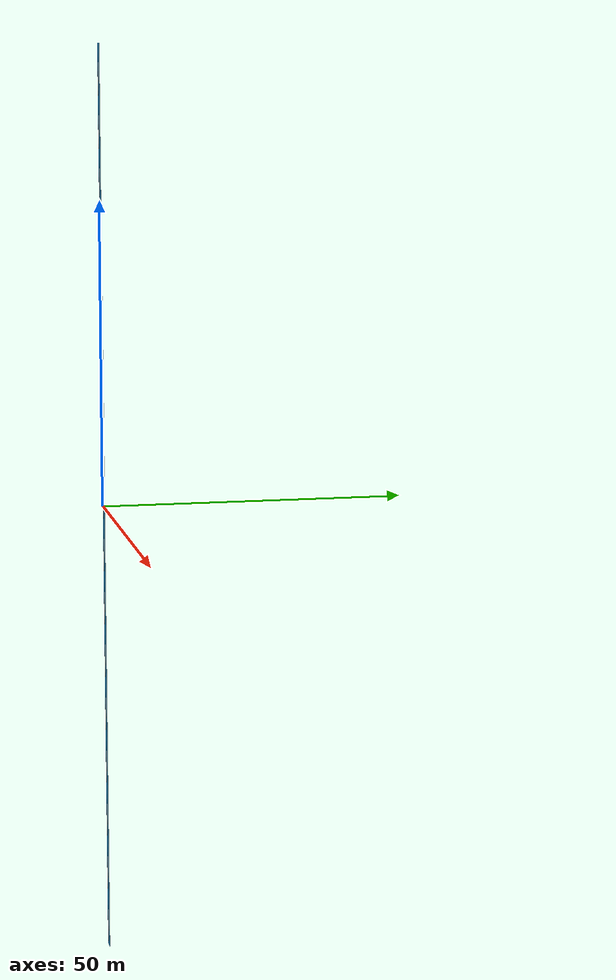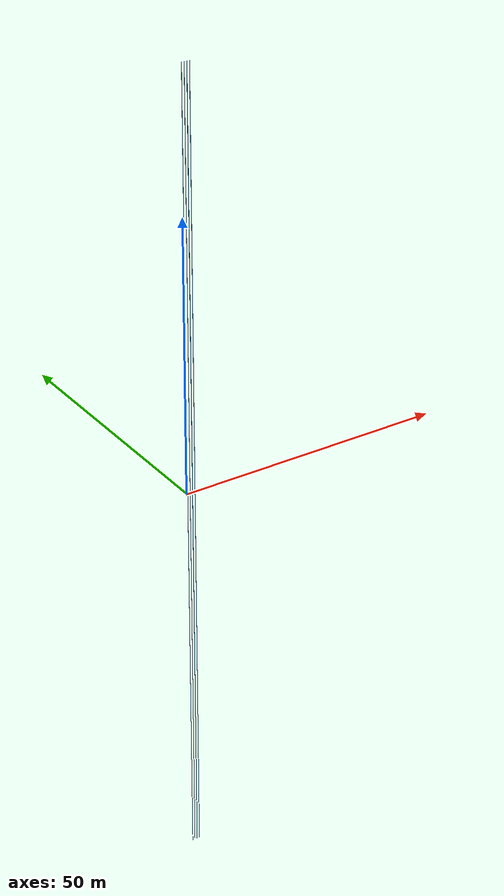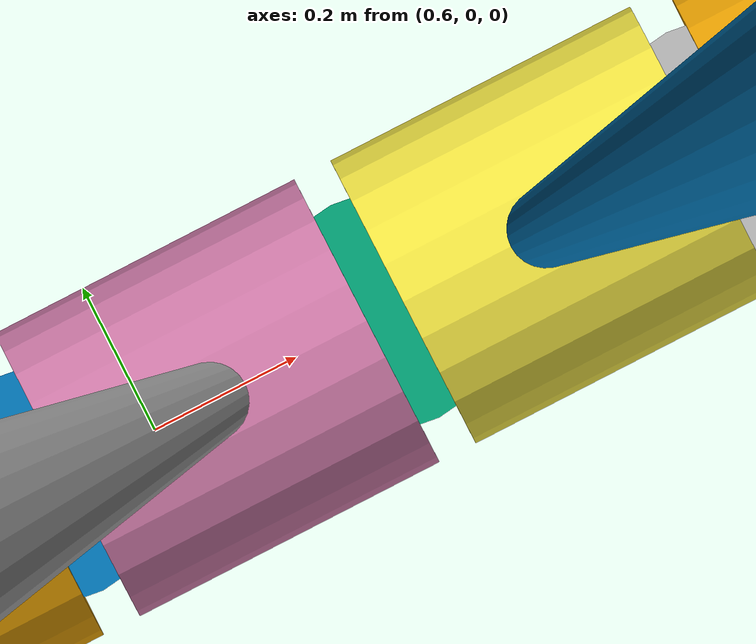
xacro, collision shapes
<?xml version="1.0"?>
<robot
    xmlns:xacro="http://www.ros.org/wiki/xacro" name="dragon" >

  <xacro:include filename="$(find aerial_robot_model)/urdf/dragon/dragon_common.xacro" />
  <xacro:include filename="$(find aerial_robot_model)/urdf/dragon/dragon_link.urdf.xacro" />

  <xacro:dragon_module self="1" child="2" baselink="false" />
  <xacro:dragon_module self="2" child="3" baselink="true" />
  <xacro:dragon_module self="3" child="4" baselink="false" />
  <xacro:dragon_module self="4" child="4" baselink="false" />
</robot>

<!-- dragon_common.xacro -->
<robot
    xmlns:xacro="http://www.ros.org/wiki/xacro" name="dragon_common" >

  <!--  model type 1: head-->
  <!--  model type 2: baselink (attached with imu, pc)-->
  <!--  model type 3: general -->
  <!--  model type 4: end -->

  <xacro:property name="pi" value="3.1415926535897931" />
  <!-- kinematics [m] -->
  <xacro:property name="link_length" value=".424" />
  <xacro:property name="inter_joint_x_offset" value=".02575" />
  <xacro:property name="gimbal_roll_x_offset" value="-0.01" />
  <xacro:property name="gimbal_pitch_z_offset" value="0.037" />

  <!-- dynamics -->
  <xacro:property name="max_force" value="18" />

  <xacro:macro name="link_model" params="type">
    <collision>
      <origin rpy="0 ${pi/2} 0" xyz="${link_length* 0.5} 0 0"/>
      <geometry>
        <cylinder length="${link_length}" radius="0.2"/>
      </geometry>
    </collision>

    <visual>
      <origin rpy="${-pi/2} 0 0" xyz="${link_length* 0.5} 0 0"/>
      <geometry>
        <mesh filename="package://aerial_robot_model/urdf/dragon/mesh/ducted_fan_${type}.dae"/>
      </geometry>
    </visual>
  </xacro:macro>

  <!-- friction -->
  <xacro:macro name="friction" params="self">
    <gazebo reference="link${self}">
      <mu1>0.0001</mu1>
      <mu2>0.0001</mu2>
    </gazebo>
  </xacro:macro>

  <xacro:macro name="damping_factor" params="link">
    <gazebo reference="${link}">
      <dampingFactor>0.00</dampingFactor>
    </gazebo>
  </xacro:macro>
</robot>

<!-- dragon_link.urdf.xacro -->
<robot
    xmlns:xacro="http://www.ros.org/wiki/xacro" name="dragon_link" >

  <!-- D-H kai description(different from prof.nakamura) -->
  <xacro:macro name="dragon_module" params="self child baselink">

    <!-- link -->
    <link name="link${self}">
      <!-- head -->
      <xacro:if value="${self == 1}">
        <inertial>
          <origin xyz="${link_length* 0.5 + 89.07 * 0.001} ${-6.90 * 0.001} ${-25.71 * 0.001}" rpy="0 0 0"/>
          <mass value="0.7694" />
          <inertia
              ixx="0.0014" iyy="0.0144" izz="0.0137"
              ixy="-0.0009" ixz="-0.0018" iyz="0.0"/>
        </inertial>
        <xacro:link_model type="head_link" />
      </xacro:if>
      <xacro:unless value="${self == 1}">

        <!-- tail -->
        <xacro:if value="${self == child}">
          <inertial>
            <origin xyz="${link_length* 0.5 + 24.31 * 0.001} ${-0.12 * 0.001} ${-18.98 * 0.001}" rpy="0 0 0"/>
            <mass value="0.7669" />
            <inertia
                ixx="0.0014" iyy="0.0146" izz="0.0134"
                ixy="0.0" ixz="-0.0029" iyz="0.0"/>
          </inertial>
          <xacro:link_model type="end_link" />
        </xacro:if>
        <xacro:unless value="${self == child}">
          <!-- baselink -->
          <xacro:if value="${baselink}">
            <inertial>
            <origin xyz="${link_length* 0.5 + 34.31 * 0.001} ${-1.41 * 0.001} ${-12.73 * 0.001}" rpy="0 0 0"/>
            <mass value="1.0337" />
            <inertia
                ixx="0.0019" iyy="0.0206" izz="0.0197"
                ixy="-0.0014" ixz="-0.0027" iyz="0.0"/>
            </inertial>
            <xacro:link_model type="baselink" />
          </xacro:if>
          <!-- general -->
          <xacro:unless value="${baselink}">
            <inertial>
              <origin xyz="${link_length* 0.5 + 48.08 * 0.001} ${-5.92 * 0.001} ${-15.22 * 0.001}" rpy="0 0 0"/>
              <mass value="0.9099" />
              <inertia
                  ixx="0.0017" iyy="0.0188" izz="0.0179"
                  ixy="-0.0009" ixz="-0.0028" iyz="0.0"/>
            </inertial>
            <xacro:link_model type="general_link" />
          </xacro:unless>
        </xacro:unless>
      </xacro:unless>
    </link>
    <xacro:damping_factor link ="link${self}"/>

    <!-- gimbal roll -->
    <joint name="gimbal${self}_roll" type="revolute">
      <limit effort="3" lower="-3.14" upper="3.14" velocity="12.5"/>
      <parent link="link${self}"/>
      <child link="gimbal${self}_roll_module"/>
      <origin rpy="0 0 0" xyz="${link_length/2} 0 0"/>
      <axis xyz="1 0 0"/>
      <dynamics damping="0.8" friction="0.05"/>
    </joint>

    <link name="gimbal${self}_roll_module">
      <!-- common inertial -->
      <inertial>
        <origin xyz="${gimbal_roll_x_offset - 17.20968 * 0.001} ${0.41439 * 0.001} ${15.61551 * 0.001}" rpy="0 0 0"/>
        <mass value="0.44011" />
        <inertia
            ixx="0.0005" iyy="0.0007" izz="0.0003"
            ixy="0" ixz="-0.0002" iyz="0.0"/>
      </inertial>

      <collision>
        <origin xyz="${gimbal_roll_x_offset} 0 0" rpy="0 0 0"/>
        <geometry>
          <cylinder length="150" radius="0.05"/>
        </geometry>
      </collision>

      <visual>
        <origin xyz="${gimbal_roll_x_offset} 0 0" rpy="${-pi/2} 0 0"/>
        <geometry>
          <mesh filename="package://aerial_robot_model/urdf/dragon/mesh/ducted_fan_gimbal_roll.dae"/>
        </geometry>
      </visual>
    </link>

    <!-- gimbal pitch -->
    <joint name="gimbal${self}_pitch" type="revolute">
      <limit effort="3" lower="-3.14" upper="3.14" velocity="12.5"/>
      <parent link="gimbal${self}_roll_module"/>
      <child link="gimbal${self}_pitch_module"/>
      <origin rpy="0 0 0" xyz="0 0 ${gimbal_pitch_z_offset}"/>
      <axis xyz="0 1 0"/>
      <dynamics damping="0.8" friction="0.05"/>
    </joint>

    <link name="gimbal${self}_pitch_module">
      <!-- common inertial -->
      <inertial>
        <origin xyz="0 0.47 -7.38" rpy="0 0 0"/>
        <mass value=".4187" />
        <inertia
            ixx="0.0047" iyy="0.0002" izz="0.0047"
            ixy="0" ixz="0.0" iyz="0.0"/>
      </inertial>

      <collision>
        <origin xyz="0 0 0" rpy="${pi/2} 0 0"/>
        <geometry>
          <cylinder length="0.3" radius="0.05"/>
        </geometry>
      </collision>

      <visual>
        <origin xyz="0 0 0" rpy="${-pi/2} 0 0"/>
        <geometry>
          <mesh filename="package://aerial_robot_model/urdf/dragon/mesh/ducted_fan_gimbal_pitch.dae"/>
        </geometry>
      </visual>
    </link>

    <!-- rotor -->
    <joint name="rotor${self}" type="continuous">
      <limit effort="100.0" lower="0" upper="${max_force}" velocity="0.5"/> <!-- force range -->
      <parent link="gimbal${self}_pitch_module"/>
      <child link="propeller${self}"/>
      <origin rpy="0 0 0" xyz="0 0 0"/>
      <axis xyz="0 0 1"/>
    </joint>

    <link name="propeller${self}">
      <inertial>
        <origin xyz="0 0 0" rpy="0 0 0"/>
        <mass value="0.000001"/>
        <inertia
            ixx="0.000001" ixy="0.0" ixz="0.0"
            iyy="0.000001" iyz="0.0"
            izz="0.000002"/>
      </inertial>
    </link>
    <xacro:damping_factor link ="propeller${self}"/>

    <!-- joint -->>
    <xacro:unless value="${self == child}">
      <joint name="joint${self}_pitch" type="revolute">
        <limit effort="10.0" lower="-1.57" upper="1.57" velocity="0.5"/>
        <parent link="link${self}"/>
        <child link="inter_joint${self}"/>
        <origin rpy="0 0 0" xyz="${link_length} 0 0"/>
        <axis xyz="0 1 0"/>
        <dynamics damping="0.8" friction="0.05"/>
      </joint>

      <!-- inter joint -->
      <link name="inter_joint${self}">
        <!-- common inertial -->
        <inertial>
          <origin xyz="${inter_joint_x_offset + 3.43 * 0.001} ${-4.27 * 0.001} ${-1.55 * 0.001}" rpy="0 0 0"/>
          <mass value="0.1329" />
          <inertia
              ixx="0.0001" iyy="0.0001" izz="0.0001"
              ixy="0" ixz="0.0" iyz="0.0"/>
        </inertial>

        <collision>
          <origin rpy="0 0 0" xyz="${inter_joint_x_offset} 0 0"/>
          <geometry>
            <cylinder length="0.15" radius="0.15"/>
          </geometry>
        </collision>

        <visual>
          <origin rpy="${-pi/2} 0 0" xyz="${inter_joint_x_offset} 0 0"/>
          <geometry>
            <mesh filename="package://aerial_robot_model/urdf/dragon/mesh/inter_joint_junction.dae"/>
          </geometry>
        </visual>
      </link>

      <joint name="joint${self}_yaw" type="revolute">
        <limit effort="10.0" lower="-1.57" upper="1.57" velocity="0.5"/>
        <parent link="inter_joint${self}"/>
        <child link="link${child}"/>
        <origin rpy="0 0 0" xyz="${2 * inter_joint_x_offset} 0 0"/>
        <axis xyz="0 0 1"/>
        <dynamics damping="0.8" friction="0.05"/>
      </joint>
    </xacro:unless>

    <xacro:if value="${self == 1}">
      <!-- dummy root link for KDL -->
      <link name="root">
        <inertial>
          <origin xyz="0 0 0" rpy="0 0 0"/>
          <mass value="0.00001"/>
          <inertia
              ixx="0.000001" ixy="0.0" ixz="0.0"
              iyy="0.000001" iyz="0.0"
              izz="0.000002"/>
        </inertial>
      </link>
      <joint name="root_joint" type="fixed">
        <parent link="root"/>
        <child link="link${self}"/>
        <origin rpy="0 0 0" xyz="0 0 0"/>
        <axis xyz="0 0 1"/>
      </joint>

    </xacro:if>

    <!-- hardware interface -->
    <xacro:unless value="${self == child}">
      <transmission name="joint_tran${self}">
        <type>transmission_interface/SimpleTransmission</type>
        <joint name="joint${self}">
          <!-- TODO: effort is torque, maybe position is enough -->
          <hardwareInterface>hardware_interface/EffortJointInterface</hardwareInterface>
        </joint>
        <actuator name="servo{self}">
          <!-- TODO: effort is torque, maybe position is enough -->
          <hardwareInterface>hardware_interface/EffortJointInterface</hardwareInterface>
          <mechanicalReduction>1</mechanicalReduction>
        </actuator>
      </transmission>
    </xacro:unless>

    <transmission name="rotor_tran${self}">
      <type>transmission_interface/SimpleTransmission</type>
      <joint name="rotor${self}">
        <!-- TODO: effort is torque, maybe position is enough -->
        <hardwareInterface>RotorInterface</hardwareInterface>
      </joint>
      <actuator name="rotor${self}">
        <!-- TODO: effort is torque, maybe position is enough -->
        <hardwareInterface>RotorInterface</hardwareInterface>
        <mechanicalReduction>1</mechanicalReduction>
      </actuator>
    </transmission>

    <xacro:friction self ="${self}"/>

  </xacro:macro>

</robot>
